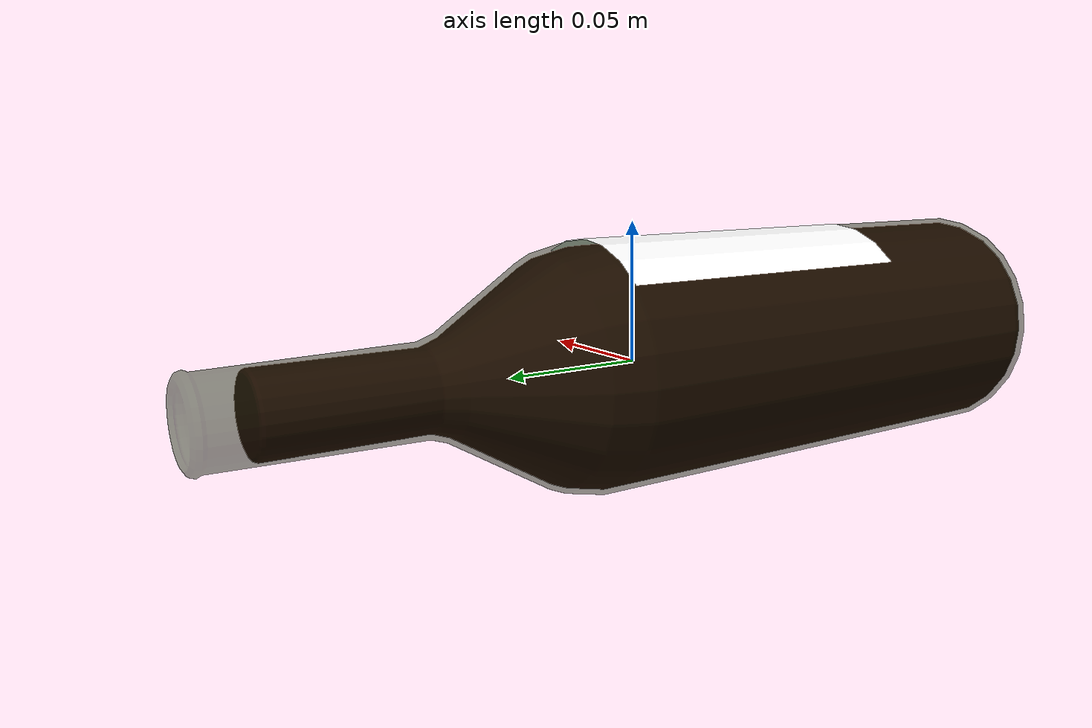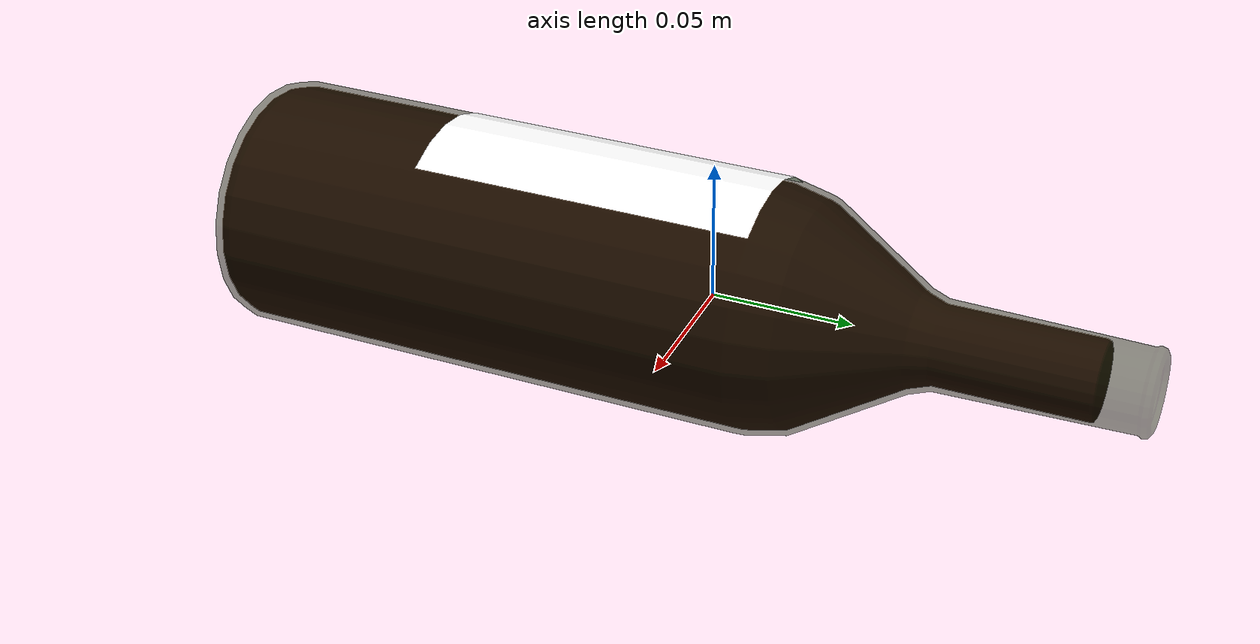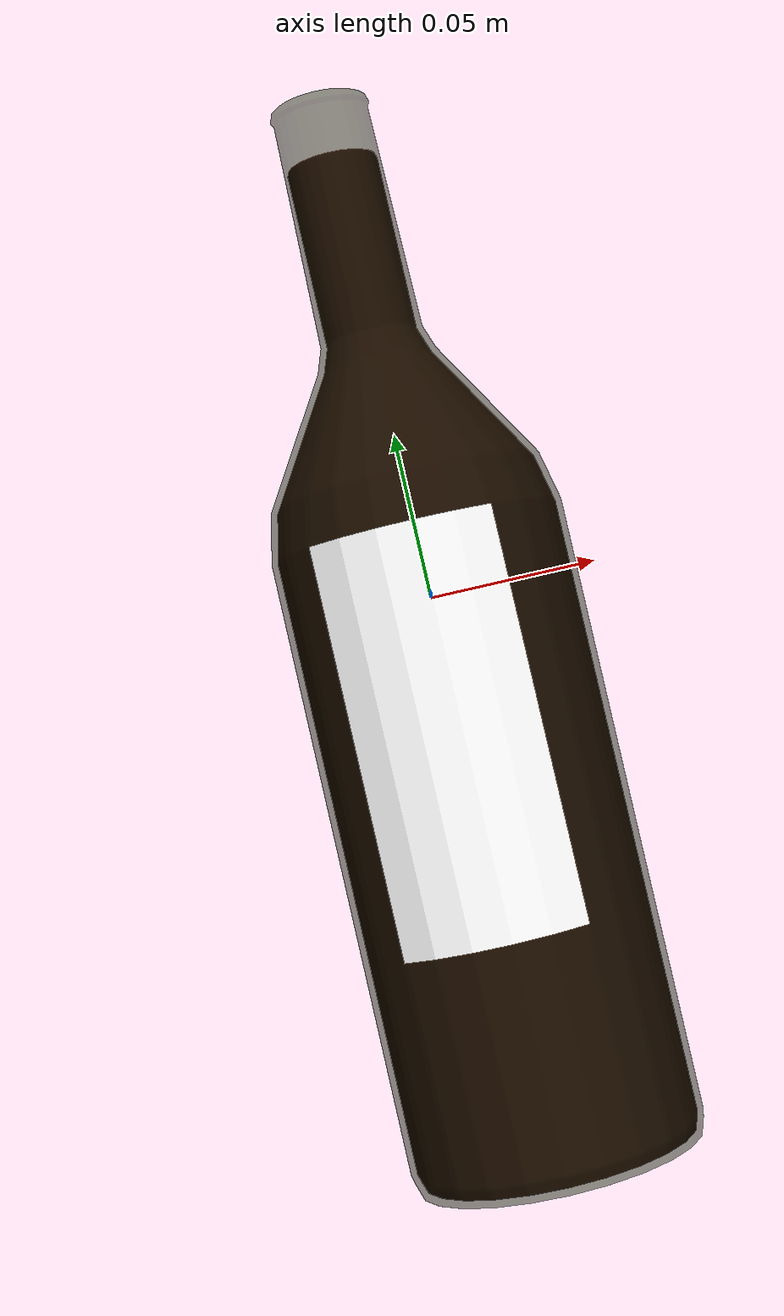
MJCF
<mujoco model="Wine_Bottle_1">
  <default>
    <default class="visual">
      <geom group="2" type="mesh" contype="0" conaffinity="0"/>
    </default>
    <default class="collision">
      <geom group="3" type="mesh"/>
    </default>
  </default>
  <asset>
    <material name="Glass_Detailed_Green_Mat" specular="0.5" shininess="0.5" rgba="0.04290061 0.1323529 0 0.484"/>
    <material name="Labels" specular="0.5" shininess="0.5" rgba="1 1 1 1.0"/>
    <material name="Wine_Volume_Mat" specular="0.5" shininess="0.5" rgba="0.1985294 0 0.02053755 1.0"/>
    <mesh file="Wine_Bottle_1_0.obj"/>
    <mesh file="Wine_Bottle_1_1.obj"/>
    <mesh file="Wine_Bottle_1_2.obj"/>
    <mesh file="Wine_Bottle_1_collision_0.obj"/>
    <mesh file="Wine_Bottle_1_collision_1.obj"/>
    <mesh file="Wine_Bottle_1_collision_2.obj"/>
    <mesh file="Wine_Bottle_1_collision_3.obj"/>
    <mesh file="Wine_Bottle_1_collision_4.obj"/>
    <mesh file="Wine_Bottle_1_collision_5.obj"/>
    <mesh file="Wine_Bottle_1_collision_6.obj"/>
  </asset>
  <worldbody>
    <body name="Wine_Bottle_1">
      <geom mesh="Wine_Bottle_1_0" material="Wine_Volume_Mat" class="visual"/>
      <geom mesh="Wine_Bottle_1_1" material="Labels" class="visual"/>
      <geom mesh="Wine_Bottle_1_2" material="Glass_Detailed_Green_Mat" class="visual"/>
      <geom mesh="Wine_Bottle_1_collision_0" rgba="0.10213699178175939 0.5341299890748448 0.23067725010092388 1" class="collision"/>
      <geom mesh="Wine_Bottle_1_collision_1" rgba="0.39896158195691334 0.35741666676646355 0.8135031896073089 1" class="collision"/>
      <geom mesh="Wine_Bottle_1_collision_2" rgba="0.24236740222934683 0.8084485326014661 0.9612994924987127 1" class="collision"/>
      <geom mesh="Wine_Bottle_1_collision_3" rgba="0.715712450919922 0.19597381633629118 0.37076471283888557 1" class="collision"/>
      <geom mesh="Wine_Bottle_1_collision_4" rgba="0.7127558669636385 0.1230322728213673 0.6370695126754947 1" class="collision"/>
      <geom mesh="Wine_Bottle_1_collision_5" rgba="0.39275253551546097 0.046944993501339405 0.31340520851343556 1" class="collision"/>
      <geom mesh="Wine_Bottle_1_collision_6" rgba="0.950719218639936 0.529431974714621 0.6588284937062827 1" class="collision"/>
    </body>
  </worldbody>
</mujoco>
